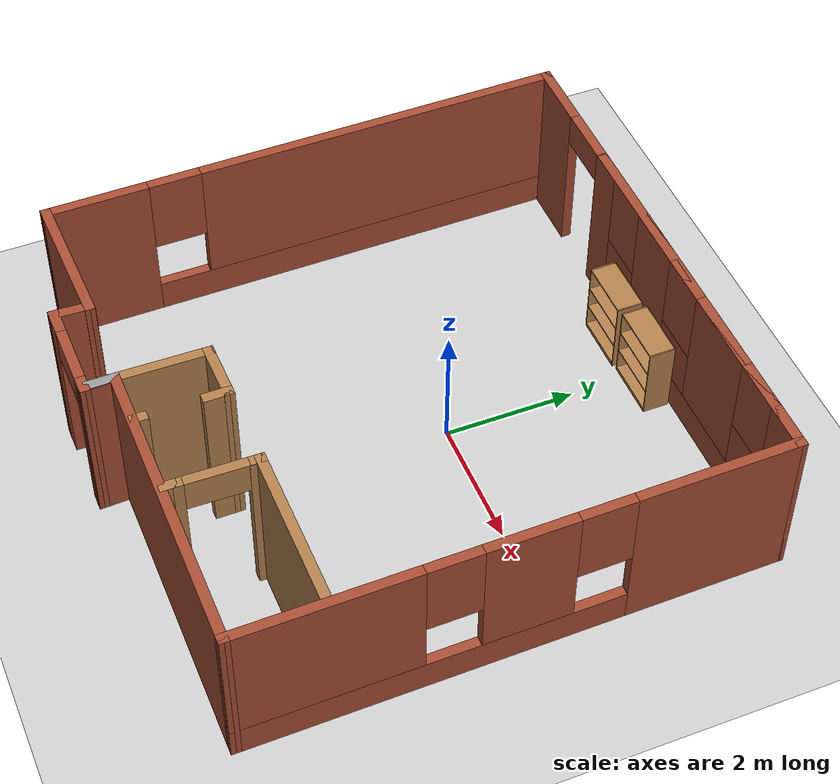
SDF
<sdf version="1.7">
 <world name="default">
  <light name="sun" type="directional">
   <pose>0 0 10 0 -0 0</pose>
   <diffuse>0.8 0.8 0.8 1</diffuse>
   <specular>0.2 0.2 0.2 1</specular>
   <attenuation>
    <range>1000</range>
    <constant>0.9</constant>
    <linear>0.01</linear>
    <quadratic>0.001</quadratic>
   </attenuation>
   <direction>-0.5 0.1 -0.9</direction>
   <spot><inner_angle>0</inner_angle><outer_angle>0</outer_angle><falloff>0</falloff></spot>
  </light>
  <model name="ground_plane">
   <static>1</static>
   <link name="link">
    <collision name="collision">
     <geometry><plane><normal>0 0 1</normal><size>100 100</size></plane></geometry>
     <surface>
      <contact><collide_bitmask>65535</collide_bitmask></contact>
      <friction><ode><mu>100</mu><mu2>50</mu2></ode></friction>
     </surface>
    </collision>
    <visual name="visual">
     <cast_shadows>0</cast_shadows>
     <geometry><plane><normal>0 0 1</normal><size>100 100</size></plane></geometry>
     <material>
      <script><uri>file://media/materials/scripts/gazebo.material</uri><name>Gazebo/Grey</name></script>
     </material>
    </visual>
   </link>
  </model>
  <gravity>0 0 -9.8</gravity>
  <magnetic_field>6e-06 2.3e-05 -4.2e-05</magnetic_field>
  <atmosphere type="adiabatic"/>
  <physics type="ode">
   <max_step_size>0.001</max_step_size>
   <real_time_factor>1</real_time_factor>
   <real_time_update_rate>1000</real_time_update_rate>
  </physics>
  <scene><ambient>0.4 0.4 0.4 1</ambient><background>0.7 0.7 0.7 1</background><shadows>1</shadows></scene>
  <audio><device>default</device></audio>
  <spherical_coordinates>
   <surface_model>EARTH_WGS84</surface_model>
   <latitude_deg>0</latitude_deg>
   <longitude_deg>0</longitude_deg>
   <elevation>0</elevation>
   <heading_deg>0</heading_deg>
  </spherical_coordinates>
  <model name="first_world">
   <pose>-0.115387 -0.833887 0 0 -0 0</pose>
   <link name="Wall_21">
    <collision name="Wall_21_Collision">
     <geometry><box><size>6 0.15 2.5</size></box></geometry>
     <pose>0 0 1.25 0 -0 0</pose>
    </collision>
    <visual name="Wall_21_Visual">
     <pose>0 0 1.25 0 -0 0</pose>
     <geometry><box><size>6 0.15 2.5</size></box></geometry>
     <material>
      <script><uri>file://media/materials/scripts/gazebo.material</uri><name>Gazebo/Bricks</name></script>
      <ambient>1 1 1 1</ambient>
     </material>
     <meta><layer>0</layer></meta>
    </visual>
    <pose>0.968407 4.17612 0 0 -0 0</pose>
   </link>
   <link name="Wall_22">
    <pose>3.93106 0.205323 0 0 -0 -1.56131</pose>
    <visual name="Wall_22_Visual_0">
     <pose>-2.82383 0 1.25 0 -0 0</pose>
     <geometry><box><size>2.44428 0.15 2.5</size></box></geometry>
     <material>
      <script><uri>file://media/materials/scripts/gazebo.material</uri><name>Gazebo/Bricks</name></script>
      <ambient>1 1 1 1</ambient>
     </material>
     <meta><layer>0</layer></meta>
    </visual>
    <collision name="Wall_22_Collision_0">
     <geometry><box><size>2.44428 0.15 2.5</size></box></geometry>
     <pose>-2.82383 0 1.25 0 -0 0</pose>
    </collision>
    <visual name="Wall_22_Visual_1">
     <pose>1.22214 0 0.25 0 -0 0</pose>
     <geometry><box><size>5.64767 0.15 0.5</size></box></geometry>
     <material>
      <script><uri>file://media/materials/scripts/gazebo.material</uri><name>Gazebo/Bricks</name></script>
      <ambient>1 1 1 1</ambient>
     </material>
     <meta><layer>0</layer></meta>
    </visual>
    <collision name="Wall_22_Collision_1">
     <geometry><box><size>5.64767 0.15 0.5</size></box></geometry>
     <pose>1.22214 0 0.25 0 -0 0</pose>
    </collision>
    <visual name="Wall_22_Visual_2">
     <pose>-0.137074 0 1.5 0 -0 0</pose>
     <geometry><box><size>1.32924 0.15 2</size></box></geometry>
     <material>
      <script><uri>file://media/materials/scripts/gazebo.material</uri><name>Gazebo/Bricks</name></script>
      <ambient>1 1 1 1</ambient>
     </material>
     <meta><layer>0</layer></meta>
    </visual>
    <collision name="Wall_22_Collision_2">
     <geometry><box><size>1.32924 0.15 2</size></box></geometry>
     <pose>-0.137074 0 1.5 0 -0 0</pose>
    </collision>
    <visual name="Wall_22_Visual_3">
     <pose>2.68676 0 1.5 0 -0 0</pose>
     <geometry><box><size>2.71843 0.15 2</size></box></geometry>
     <material>
      <script><uri>file://media/materials/scripts/gazebo.material</uri><name>Gazebo/Bricks</name></script>
      <ambient>1 1 1 1</ambient>
     </material>
     <meta><layer>0</layer></meta>
    </visual>
    <collision name="Wall_22_Collision_3">
     <geometry><box><size>2.71843 0.15 2</size></box></geometry>
     <pose>2.68676 0 1.5 0 -0 0</pose>
    </collision>
    <visual name="Wall_22_Visual_4">
     <pose>-1.20169 0 1.9 0 -0 0</pose>
     <geometry><box><size>0.8 0.15 1.2</size></box></geometry>
     <material>
      <script><uri>file://media/materials/scripts/gazebo.material</uri><name>Gazebo/Bricks</name></script>
      <ambient>1 1 1 1</ambient>
     </material>
     <meta><layer>0</layer></meta>
    </visual>
    <collision name="Wall_22_Collision_4">
     <geometry><box><size>0.8 0.15 1.2</size></box></geometry>
     <pose>-1.20169 0 1.9 0 -0 0</pose>
    </collision>
    <visual name="Wall_22_Visual_5">
     <pose>0.927544 0 1.9 0 -0 0</pose>
     <geometry><box><size>0.8 0.15 1.2</size></box></geometry>
     <material>
      <script><uri>file://media/materials/scripts/gazebo.material</uri><name>Gazebo/Bricks</name></script>
      <ambient>1 1 1 1</ambient>
     </material>
     <meta><layer>0</layer></meta>
    </visual>
    <collision name="Wall_22_Collision_5">
     <geometry><box><size>0.8 0.15 1.2</size></box></geometry>
     <pose>0.927544 0 1.9 0 -0 0</pose>
    </collision>
   </link>
   <link name="Wall_23">
    <collision name="Wall_23_Collision">
     <geometry><box><size>4.65766 0.15 2.5</size></box></geometry>
     <pose>0 0 1.25 0 -0 0</pose>
    </collision>
    <visual name="Wall_23_Visual">
     <pose>0 0 1.25 0 -0 0</pose>
     <geometry><box><size>4.65766 0.15 2.5</size></box></geometry>
     <material>
      <script><uri>file://media/materials/scripts/gazebo.material</uri><name>Gazebo/Bricks</name></script>
      <ambient>1 1 1 1</ambient>
     </material>
     <meta><layer>0</layer></meta>
    </visual>
    <pose>1.71492 -3.75237 0 0 -0 3.13578</pose>
   </link>
   <link name="Wall_24">
    <collision name="Wall_24_Collision">
     <geometry><box><size>0.5 0.15 2.5</size></box></geometry>
     <pose>0 0 1.25 0 -0 0</pose>
    </collision>
    <visual name="Wall_24_Visual">
     <pose>0 0 1.25 0 -0 0</pose>
     <geometry><box><size>0.5 0.15 2.5</size></box></geometry>
     <material>
      <script><uri>file://media/materials/scripts/gazebo.material</uri><name>Gazebo/Grey</name></script>
      <ambient>1 1 1 1</ambient>
     </material>
     <meta><layer>0</layer></meta>
    </visual>
    <pose>-0.538871 -3.91427 0 0 -0 -1.5708</pose>
   </link>
   <link name="Wall_26">
    <collision name="Wall_26_Collision">
     <geometry><box><size>0.5 0.15 2.5</size></box></geometry>
     <pose>0 0 1.25 0 -0 0</pose>
    </collision>
    <visual name="Wall_26_Visual">
     <pose>0 0 1.25 0 -0 0</pose>
     <geometry><box><size>0.5 0.15 2.5</size></box></geometry>
     <material>
      <script><uri>file://media/materials/scripts/gazebo.material</uri><name>Gazebo/Bricks</name></script>
      <ambient>1 1 1 1</ambient>
     </material>
     <meta><layer>0</layer></meta>
    </visual>
    <pose>-0.538871 -3.91427 0 0 -0 -1.5708</pose>
   </link>
   <link name="Wall_28">
    <pose>-1.23789 -4.17293 0 0 -0 0</pose>
    <visual name="Wall_28_Visual_0">
     <pose>-0.586909 0 1.25 0 -0 0</pose>
     <geometry><box><size>0.410991 0.15 2.5</size></box></geometry>
     <material>
      <script><uri>file://media/materials/scripts/gazebo.material</uri><name>Gazebo/Bricks</name></script>
      <ambient>1 1 1 1</ambient>
     </material>
     <meta><layer>0</layer></meta>
    </visual>
    <collision name="Wall_28_Collision_0">
     <geometry><box><size>0.410991 0.15 2.5</size></box></geometry>
     <pose>-0.586909 0 1.25 0 -0 0</pose>
    </collision>
    <visual name="Wall_28_Visual_1">
     <pose>0.655495 0 1.25 0 -0 0</pose>
     <geometry><box><size>0.273818 0.15 2.5</size></box></geometry>
     <material>
      <script><uri>file://media/materials/scripts/gazebo.material</uri><name>Gazebo/Bricks</name></script>
      <ambient>1 1 1 1</ambient>
     </material>
     <meta><layer>0</layer></meta>
    </visual>
    <collision name="Wall_28_Collision_1">
     <geometry><box><size>0.273818 0.15 2.5</size></box></geometry>
     <pose>0.655495 0 1.25 0 -0 0</pose>
    </collision>
    <visual name="Wall_28_Visual_2">
     <pose>0.068586 0 2.25 0 -0 0</pose>
     <geometry><box><size>0.9 0.15 0.5</size></box></geometry>
     <material>
      <script><uri>file://media/materials/scripts/gazebo.material</uri><name>Gazebo/Bricks</name></script>
      <ambient>1 1 1 1</ambient>
     </material>
     <meta><layer>0</layer></meta>
    </visual>
    <collision name="Wall_28_Collision_2">
     <geometry><box><size>0.9 0.15 0.5</size></box></geometry>
     <pose>0.068586 0 2.25 0 -0 0</pose>
    </collision>
   </link>
   <link name="Wall_29">
    <collision name="Wall_29_Collision">
     <geometry><box><size>0.584045 0.15 2.5</size></box></geometry>
     <pose>0 0 1.25 0 -0 0</pose>
    </collision>
    <visual name="Wall_29_Visual">
     <pose>0 0 1.25 0 -0 0</pose>
     <geometry><box><size>0.584045 0.15 2.5</size></box></geometry>
     <material>
      <script><uri>file://media/materials/scripts/gazebo.material</uri><name>Gazebo/Bricks</name></script>
      <ambient>1 1 1 1</ambient>
     </material>
     <meta><layer>0</layer></meta>
    </visual>
    <pose>-0.529686 -3.9561 0 0 -0 1.61313</pose>
   </link>
   <link name="Wall_31">
    <collision name="Wall_31_Collision">
     <geometry><box><size>0.637655 0.15 2.5</size></box></geometry>
     <pose>0 0 1.25 0 -0 0</pose>
    </collision>
    <visual name="Wall_31_Visual">
     <pose>0 0 1.25 0 -0 0</pose>
     <geometry><box><size>0.637655 0.15 2.5</size></box></geometry>
     <material>
      <script><uri>file://media/materials/scripts/gazebo.material</uri><name>Gazebo/Bricks</name></script>
      <ambient>1 1 1 1</ambient>
     </material>
     <meta><layer>0</layer></meta>
    </visual>
    <pose>-1.94224 -3.92945 0 0 -0 -1.62432</pose>
   </link>
   <link name="Wall_34">
    <collision name="Wall_34_Collision">
     <geometry><box><size>2.1493 0.15 2.5</size></box></geometry>
     <pose>0 0 1.25 0 -0 0</pose>
    </collision>
    <visual name="Wall_34_Visual">
     <pose>0 0 1.25 0 -0 0</pose>
     <geometry><box><size>2.1493 0.15 2.5</size></box></geometry>
     <material>
      <script><uri>file://media/materials/scripts/gazebo.material</uri><name>Gazebo/Bricks</name></script>
      <ambient>1 1 1 1</ambient>
     </material>
     <meta><layer>0</layer></meta>
    </visual>
    <pose>-2.92862 -3.70717 0 0 -0 0.02121</pose>
   </link>
   <link name="Wall_36">
    <pose>-3.94854 0.223441 0 0 -0 1.57598</pose>
    <visual name="Wall_36_Visual_0">
     <pose>-3.22901 0 1.25 0 -0 0</pose>
     <geometry><box><size>1.59571 0.15 2.5</size></box></geometry>
     <material>
      <script><uri>file://media/materials/scripts/gazebo.material</uri><name>Gazebo/Bricks</name></script>
      <ambient>1 1 1 1</ambient>
     </material>
     <meta><layer>0</layer></meta>
    </visual>
    <collision name="Wall_36_Collision_0">
     <geometry><box><size>1.59571 0.15 2.5</size></box></geometry>
     <pose>-3.22901 0 1.25 0 -0 0</pose>
    </collision>
    <visual name="Wall_36_Visual_1">
     <pose>0.797854 0 0.25 0 -0 0</pose>
     <geometry><box><size>6.45802 0.15 0.5</size></box></geometry>
     <material>
      <script><uri>file://media/materials/scripts/gazebo.material</uri><name>Gazebo/Bricks</name></script>
      <ambient>1 1 1 1</ambient>
     </material>
     <meta><layer>0</layer></meta>
    </visual>
    <collision name="Wall_36_Collision_1">
     <geometry><box><size>6.45802 0.15 0.5</size></box></geometry>
     <pose>0.797854 0 0.25 0 -0 0</pose>
    </collision>
    <visual name="Wall_36_Visual_2">
     <pose>1.19785 0 1.5 0 -0 0</pose>
     <geometry><box><size>5.65802 0.15 2</size></box></geometry>
     <material>
      <script><uri>file://media/materials/scripts/gazebo.material</uri><name>Gazebo/Bricks</name></script>
      <ambient>1 1 1 1</ambient>
     </material>
     <meta><layer>0</layer></meta>
    </visual>
    <collision name="Wall_36_Collision_2">
     <geometry><box><size>5.65802 0.15 2</size></box></geometry>
     <pose>1.19785 0 1.5 0 -0 0</pose>
    </collision>
    <visual name="Wall_36_Visual_3">
     <pose>-2.03116 0 1.9 0 -0 0</pose>
     <geometry><box><size>0.8 0.15 1.2</size></box></geometry>
     <material>
      <script><uri>file://media/materials/scripts/gazebo.material</uri><name>Gazebo/Bricks</name></script>
      <ambient>1 1 1 1</ambient>
     </material>
     <meta><layer>0</layer></meta>
    </visual>
    <collision name="Wall_36_Collision_3">
     <geometry><box><size>0.8 0.15 1.2</size></box></geometry>
     <pose>-2.03116 0 1.9 0 -0 0</pose>
    </collision>
   </link>
   <link name="Wall_39">
    <pose>-0.037815 4.17569 0 0 -0 0.00011</pose>
    <visual name="Wall_39_Visual_0">
     <pose>-3.4598 0 1.25 0 -0 0</pose>
     <geometry><box><size>1.09284 0.15 2.5</size></box></geometry>
     <material>
      <script><uri>file://media/materials/scripts/gazebo.material</uri><name>Gazebo/Bricks</name></script>
      <ambient>1 1 1 1</ambient>
     </material>
     <meta><layer>0</layer></meta>
    </visual>
    <collision name="Wall_39_Collision_0">
     <geometry><box><size>1.09284 0.15 2.5</size></box></geometry>
     <pose>-3.4598 0 1.25 0 -0 0</pose>
    </collision>
    <visual name="Wall_39_Visual_1">
     <pose>-1.72251 0 1.25 0 -0 0</pose>
     <geometry><box><size>0.581728 0.15 2.5</size></box></geometry>
     <material>
      <script><uri>file://media/materials/scripts/gazebo.material</uri><name>Gazebo/Bricks</name></script>
      <ambient>1 1 1 1</ambient>
     </material>
     <meta><layer>0</layer></meta>
    </visual>
    <collision name="Wall_39_Collision_1">
     <geometry><box><size>0.581728 0.15 2.5</size></box></geometry>
     <pose>-1.72251 0 1.25 0 -0 0</pose>
    </collision>
    <visual name="Wall_39_Visual_2">
     <pose>1.28729 0 0.25 0 -0 0</pose>
     <geometry><box><size>5.43787 0.15 0.5</size></box></geometry>
     <material>
      <script><uri>file://media/materials/scripts/gazebo.material</uri><name>Gazebo/Bricks</name></script>
      <ambient>1 1 1 1</ambient>
     </material>
     <meta><layer>0</layer></meta>
    </visual>
    <collision name="Wall_39_Collision_2">
     <geometry><box><size>5.43787 0.15 0.5</size></box></geometry>
     <pose>1.28729 0 0.25 0 -0 0</pose>
    </collision>
    <visual name="Wall_39_Visual_3">
     <pose>-0.141117 0 1.5 0 -0 0</pose>
     <geometry><box><size>0.981067 0.15 2</size></box></geometry>
     <material>
      <script><uri>file://media/materials/scripts/gazebo.material</uri><name>Gazebo/Bricks</name></script>
      <ambient>1 1 1 1</ambient>
     </material>
     <meta><layer>0</layer></meta>
    </visual>
    <collision name="Wall_39_Collision_3">
     <geometry><box><size>0.981067 0.15 2</size></box></geometry>
     <pose>-0.141117 0 1.5 0 -0 0</pose>
    </collision>
    <visual name="Wall_39_Visual_4">
     <pose>1.81341 0 1.5 0 -0 0</pose>
     <geometry><box><size>1.32798 0.15 2</size></box></geometry>
     <material>
      <script><uri>file://media/materials/scripts/gazebo.material</uri><name>Gazebo/Bricks</name></script>
      <ambient>1 1 1 1</ambient>
     </material>
     <meta><layer>0</layer></meta>
    </visual>
    <collision name="Wall_39_Collision_4">
     <geometry><box><size>1.32798 0.15 2</size></box></geometry>
     <pose>1.81341 0 1.5 0 -0 0</pose>
    </collision>
    <visual name="Wall_39_Visual_5">
     <pose>3.64181 0 1.5 0 -0 0</pose>
     <geometry><box><size>0.728822 0.15 2</size></box></geometry>
     <material>
      <script><uri>file://media/materials/scripts/gazebo.material</uri><name>Gazebo/Bricks</name></script>
      <ambient>1 1 1 1</ambient>
     </material>
     <meta><layer>0</layer></meta>
    </visual>
    <collision name="Wall_39_Collision_5">
     <geometry><box><size>0.728822 0.15 2</size></box></geometry>
     <pose>3.64181 0 1.5 0 -0 0</pose>
    </collision>
    <visual name="Wall_39_Visual_6">
     <pose>-1.03165 0 1.9 0 -0 0</pose>
     <geometry><box><size>0.8 0.15 1.2</size></box></geometry>
     <material>
      <script><uri>file://media/materials/scripts/gazebo.material</uri><name>Gazebo/Bricks</name></script>
      <ambient>1 1 1 1</ambient>
     </material>
     <meta><layer>0</layer></meta>
    </visual>
    <collision name="Wall_39_Collision_6">
     <geometry><box><size>0.8 0.15 1.2</size></box></geometry>
     <pose>-1.03165 0 1.9 0 -0 0</pose>
    </collision>
    <visual name="Wall_39_Visual_7">
     <pose>0.749417 0 1.9 0 -0 0</pose>
     <geometry><box><size>0.8 0.15 1.2</size></box></geometry>
     <material>
      <script><uri>file://media/materials/scripts/gazebo.material</uri><name>Gazebo/Bricks</name></script>
      <ambient>1 1 1 1</ambient>
     </material>
     <meta><layer>0</layer></meta>
    </visual>
    <collision name="Wall_39_Collision_7">
     <geometry><box><size>0.8 0.15 1.2</size></box></geometry>
     <pose>0.749417 0 1.9 0 -0 0</pose>
    </collision>
    <visual name="Wall_39_Visual_8">
     <pose>2.8774 0 1.9 0 -0 0</pose>
     <geometry><box><size>0.8 0.15 1.2</size></box></geometry>
     <material>
      <script><uri>file://media/materials/scripts/gazebo.material</uri><name>Gazebo/Bricks</name></script>
      <ambient>1 1 1 1</ambient>
     </material>
     <meta><layer>0</layer></meta>
    </visual>
    <collision name="Wall_39_Collision_8">
     <geometry><box><size>0.8 0.15 1.2</size></box></geometry>
     <pose>2.8774 0 1.9 0 -0 0</pose>
    </collision>
    <visual name="Wall_39_Visual_9">
     <pose>-2.46338 0 2.25 0 -0 0</pose>
     <geometry><box><size>0.9 0.15 0.5</size></box></geometry>
     <material>
      <script><uri>file://media/materials/scripts/gazebo.material</uri><name>Gazebo/Bricks</name></script>
      <ambient>1 1 1 1</ambient>
     </material>
     <meta><layer>0</layer></meta>
    </visual>
    <collision name="Wall_39_Collision_9">
     <geometry><box><size>0.9 0.15 0.5</size></box></geometry>
     <pose>-2.46338 0 2.25 0 -0 0</pose>
    </collision>
   </link>
   <link name="Wall_41">
    <collision name="Wall_41_Collision">
     <geometry><box><size>2.5 0.15 2.5</size></box></geometry>
     <pose>0 0 1.25 0 -0 0</pose>
    </collision>
    <visual name="Wall_41_Visual">
     <pose>0 0 1.25 0 -0 0</pose>
     <geometry><box><size>2.5 0.15 2.5</size></box></geometry>
     <material>
      <script><uri>file://media/materials/scripts/gazebo.material</uri><name>Gazebo/Wood</name></script>
      <ambient>1 1 1 1</ambient>
     </material>
     <meta><layer>0</layer></meta>
    </visual>
    <pose>2.68137 -2.39982 0 0 -0 0</pose>
   </link>
   <link name="Wall_43">
    <collision name="Wall_43_Collision">
     <geometry><box><size>1.46697 0.15 2.5</size></box></geometry>
     <pose>0 0 1.25 0 -0 0</pose>
    </collision>
    <visual name="Wall_43_Visual">
     <pose>0 0 1.25 0 -0 0</pose>
     <geometry><box><size>1.46697 0.15 2.5</size></box></geometry>
     <material>
      <script><uri>file://media/materials/scripts/gazebo.material</uri><name>Gazebo/Wood</name></script>
      <ambient>1 1 1 1</ambient>
     </material>
     <meta><layer>0</layer></meta>
    </visual>
    <pose>-0.528965 -3.08086 0 0 -0 1.55575</pose>
   </link>
   <link name="Wall_44">
    <collision name="Wall_44_Collision">
     <geometry><box><size>0.927605 0.15 2.5</size></box></geometry>
     <pose>0 0 1.25 0 -0 0</pose>
    </collision>
    <visual name="Wall_44_Visual">
     <pose>0 0 1.25 0 -0 0</pose>
     <geometry><box><size>0.927605 0.15 2.5</size></box></geometry>
     <material>
      <script><uri>file://media/materials/scripts/gazebo.material</uri><name>Gazebo/Wood</name></script>
      <ambient>1 1 1 1</ambient>
     </material>
     <meta><layer>0</layer></meta>
    </visual>
    <pose>-0.130266 -2.41959 0 0 -0 0.007353</pose>
   </link>
   <link name="Wall_45">
    <collision name="Wall_45_Collision">
     <geometry><box><size>0.44165 0.15 2.5</size></box></geometry>
     <pose>0 0 1.25 0 -0 0</pose>
    </collision>
    <visual name="Wall_45_Visual">
     <pose>0 0 1.25 0 -0 0</pose>
     <geometry><box><size>0.44165 0.15 2.5</size></box></geometry>
     <material>
      <script><uri>file://media/materials/scripts/gazebo.material</uri><name>Gazebo/Wood</name></script>
      <ambient>1 1 1 1</ambient>
     </material>
     <meta><layer>0</layer></meta>
    </visual>
    <pose>0.258526 -2.56252 0 0 -0 -1.5708</pose>
   </link>
   <link name="Wall_47">
    <collision name="Wall_47_Collision">
     <geometry><box><size>0.25 0.15 2.5</size></box></geometry>
     <pose>0 0 1.25 0 -0 0</pose>
    </collision>
    <visual name="Wall_47_Visual">
     <pose>0 0 1.25 0 -0 0</pose>
     <geometry><box><size>0.25 0.15 2.5</size></box></geometry>
     <material>
      <script><uri>file://media/materials/scripts/gazebo.material</uri><name>Gazebo/Wood</name></script>
      <ambient>1 1 1 1</ambient>
     </material>
     <meta><layer>0</layer></meta>
    </visual>
    <pose>0.252808 -3.65597 0 0 -0 -1.5708</pose>
   </link>
   <link name="Wall_49">
    <collision name="Wall_49_Collision">
     <geometry><box><size>0.25 0.15 2.5</size></box></geometry>
     <pose>0 0 1.25 0 -0 0</pose>
    </collision>
    <visual name="Wall_49_Visual">
     <pose>0 0 1.25 0 -0 0</pose>
     <geometry><box><size>0.25 0.15 2.5</size></box></geometry>
     <material>
      <script><uri>file://media/materials/scripts/gazebo.material</uri><name>Gazebo/Wood</name></script>
      <ambient>1 1 1 1</ambient>
     </material>
     <meta><layer>0</layer></meta>
    </visual>
    <pose>1.50637 -2.44982 0 0 -0 -1.5708</pose>
   </link>
   <link name="Wall_51">
    <collision name="Wall_51_Collision">
     <geometry><box><size>0.25 0.15 2.5</size></box></geometry>
     <pose>0 0 1.25 0 -0 0</pose>
    </collision>
    <visual name="Wall_51_Visual">
     <pose>0 0 1.25 0 -0 0</pose>
     <geometry><box><size>0.25 0.15 2.5</size></box></geometry>
     <material>
      <script><uri>file://media/materials/scripts/gazebo.material</uri><name>Gazebo/Wood</name></script>
      <ambient>1 1 1 1</ambient>
     </material>
     <meta><layer>0</layer></meta>
    </visual>
    <pose>1.48208 -3.65317 0 0 -0 1.5708</pose>
   </link>
   <link name="Wall_52">
    <pose>1.49423 -3.00149 0 0 -0 1.55061</pose>
    <visual name="Wall_52_Visual_0">
     <pose>-0.565649 0 1.25 0 -0 0</pose>
     <geometry><box><size>0.222302 0.15 2.5</size></box></geometry>
     <material>
      <script><uri>file://media/materials/scripts/gazebo.material</uri><name>Gazebo/Wood</name></script>
      <ambient>1 1 1 1</ambient>
     </material>
     <meta><layer>0</layer></meta>
    </visual>
    <collision name="Wall_52_Collision_0">
     <geometry><box><size>0.222302 0.15 2.5</size></box></geometry>
     <pose>-0.565649 0 1.25 0 -0 0</pose>
    </collision>
    <visual name="Wall_52_Visual_1">
     <pose>0.561151 0 1.25 0 -0 0</pose>
     <geometry><box><size>0.231299 0.15 2.5</size></box></geometry>
     <material>
      <script><uri>file://media/materials/scripts/gazebo.material</uri><name>Gazebo/Wood</name></script>
      <ambient>1 1 1 1</ambient>
     </material>
     <meta><layer>0</layer></meta>
    </visual>
    <collision name="Wall_52_Collision_1">
     <geometry><box><size>0.231299 0.15 2.5</size></box></geometry>
     <pose>0.561151 0 1.25 0 -0 0</pose>
    </collision>
    <visual name="Wall_52_Visual_2">
     <pose>-0.004498 0 2.25 0 -0 0</pose>
     <geometry><box><size>0.9 0.15 0.5</size></box></geometry>
     <material>
      <script><uri>file://media/materials/scripts/gazebo.material</uri><name>Gazebo/Wood</name></script>
      <ambient>1 1 1 1</ambient>
     </material>
     <meta><layer>0</layer></meta>
    </visual>
    <collision name="Wall_52_Collision_2">
     <geometry><box><size>0.9 0.15 0.5</size></box></geometry>
     <pose>-0.004498 0 2.25 0 -0 0</pose>
    </collision>
   </link>
   <static>1</static>
  </model>
  <model name="bookshelf">
   <static>1</static>
   <link name="link">
    <inertial><mass>1</mass></inertial>
    <collision name="back">
     <pose>0 0.005 0.6 0 -0 0</pose>
     <geometry><box><size>0.9 0.01 1.2</size></box></geometry>
    </collision>
    <visual name="visual1">
     <pose>0 0.005 0.6 0 -0 0</pose>
     <geometry><box><size>0.9 0.01 1.2</size></box></geometry>
     <material>
      <script><uri>file://media/materials/scripts/gazebo.material</uri><name>Gazebo/Wood</name></script>
     </material>
    </visual>
    <collision name="left_side">
     <pose>0.45 -0.195 0.6 0 -0 0</pose>
     <geometry><box><size>0.02 0.4 1.2</size></box></geometry>
    </collision>
    <visual name="visual2">
     <pose>0.45 -0.195 0.6 0 -0 0</pose>
     <geometry><box><size>0.02 0.4 1.2</size></box></geometry>
     <material>
      <script><uri>file://media/materials/scripts/gazebo.material</uri><name>Gazebo/Wood</name></script>
     </material>
    </visual>
    <collision name="right_side">
     <pose>-0.45 -0.195 0.6 0 -0 0</pose>
     <geometry><box><size>0.02 0.4 1.2</size></box></geometry>
    </collision>
    <visual name="visual3">
     <pose>-0.45 -0.195 0.6 0 -0 0</pose>
     <geometry><box><size>0.02 0.4 1.2</size></box></geometry>
     <material>
      <script><uri>file://media/materials/scripts/gazebo.material</uri><name>Gazebo/Wood</name></script>
     </material>
    </visual>
    <collision name="bottom">
     <pose>0 -0.195 0.03 0 -0 0</pose>
     <geometry><box><size>0.88 0.4 0.06</size></box></geometry>
    </collision>
    <visual name="visual4">
     <pose>0 -0.195 0.03 0 -0 0</pose>
     <geometry><box><size>0.88 0.4 0.06</size></box></geometry>
     <material>
      <script><uri>file://media/materials/scripts/gazebo.material</uri><name>Gazebo/Wood</name></script>
     </material>
    </visual>
    <collision name="top">
     <pose>0 -0.195 1.19 0 -0 0</pose>
     <geometry><box><size>0.88 0.4 0.02</size></box></geometry>
    </collision>
    <visual name="visual5">
     <pose>0 -0.195 1.19 0 -0 0</pose>
     <geometry><box><size>0.88 0.4 0.02</size></box></geometry>
     <material>
      <script><uri>file://media/materials/scripts/gazebo.material</uri><name>Gazebo/Wood</name></script>
     </material>
    </visual>
    <collision name="low_shelf">
     <pose>0 -0.195 0.43 0 -0 0</pose>
     <geometry><box><size>0.88 0.4 0.02</size></box></geometry>
    </collision>
    <visual name="visual6">
     <pose>0 -0.195 0.43 0 -0 0</pose>
     <geometry><box><size>0.88 0.4 0.02</size></box></geometry>
     <material>
      <script><uri>file://media/materials/scripts/gazebo.material</uri><name>Gazebo/Wood</name></script>
     </material>
    </visual>
    <collision name="high_shelf">
     <pose>0 -0.195 0.8 0 -0 0</pose>
     <geometry><box><size>0.88 0.4 0.02</size></box></geometry>
    </collision>
    <visual name="visual7">
     <pose>0 -0.195 0.8 0 -0 0</pose>
     <geometry><box><size>0.88 0.4 0.02</size></box></geometry>
     <material>
      <script><uri>file://media/materials/scripts/gazebo.material</uri><name>Gazebo/Wood</name></script>
     </material>
    </visual>
   </link>
   <pose>-0.743126 3.19977 0 0 -0 0</pose>
  </model>
  <model name="bookshelf_0">
   <static>1</static>
   <link name="link">
    <inertial><mass>1</mass></inertial>
    <collision name="back">
     <pose>0 0.005 0.6 0 -0 0</pose>
     <geometry><box><size>0.9 0.01 1.2</size></box></geometry>
    </collision>
    <visual name="visual1">
     <pose>0 0.005 0.6 0 -0 0</pose>
     <geometry><box><size>0.9 0.01 1.2</size></box></geometry>
     <material>
      <script><uri>file://media/materials/scripts/gazebo.material</uri><name>Gazebo/Wood</name></script>
     </material>
    </visual>
    <collision name="left_side">
     <pose>0.45 -0.195 0.6 0 -0 0</pose>
     <geometry><box><size>0.02 0.4 1.2</size></box></geometry>
    </collision>
    <visual name="visual2">
     <pose>0.45 -0.195 0.6 0 -0 0</pose>
     <geometry><box><size>0.02 0.4 1.2</size></box></geometry>
     <material>
      <script><uri>file://media/materials/scripts/gazebo.material</uri><name>Gazebo/Wood</name></script>
     </material>
    </visual>
    <collision name="right_side">
     <pose>-0.45 -0.195 0.6 0 -0 0</pose>
     <geometry><box><size>0.02 0.4 1.2</size></box></geometry>
    </collision>
    <visual name="visual3">
     <pose>-0.45 -0.195 0.6 0 -0 0</pose>
     <geometry><box><size>0.02 0.4 1.2</size></box></geometry>
     <material>
      <script><uri>file://media/materials/scripts/gazebo.material</uri><name>Gazebo/Wood</name></script>
     </material>
    </visual>
    <collision name="bottom">
     <pose>0 -0.195 0.03 0 -0 0</pose>
     <geometry><box><size>0.88 0.4 0.06</size></box></geometry>
    </collision>
    <visual name="visual4">
     <pose>0 -0.195 0.03 0 -0 0</pose>
     <geometry><box><size>0.88 0.4 0.06</size></box></geometry>
     <material>
      <script><uri>file://media/materials/scripts/gazebo.material</uri><name>Gazebo/Wood</name></script>
     </material>
    </visual>
    <collision name="top">
     <pose>0 -0.195 1.19 0 -0 0</pose>
     <geometry><box><size>0.88 0.4 0.02</size></box></geometry>
    </collision>
    <visual name="visual5">
     <pose>0 -0.195 1.19 0 -0 0</pose>
     <geometry><box><size>0.88 0.4 0.02</size></box></geometry>
     <material>
      <script><uri>file://media/materials/scripts/gazebo.material</uri><name>Gazebo/Wood</name></script>
     </material>
    </visual>
    <collision name="low_shelf">
     <pose>0 -0.195 0.43 0 -0 0</pose>
     <geometry><box><size>0.88 0.4 0.02</size></box></geometry>
    </collision>
    <visual name="visual6">
     <pose>0 -0.195 0.43 0 -0 0</pose>
     <geometry><box><size>0.88 0.4 0.02</size></box></geometry>
     <material>
      <script><uri>file://media/materials/scripts/gazebo.material</uri><name>Gazebo/Wood</name></script>
     </material>
    </visual>
    <collision name="high_shelf">
     <pose>0 -0.195 0.8 0 -0 0</pose>
     <geometry><box><size>0.88 0.4 0.02</size></box></geometry>
    </collision>
    <visual name="visual7">
     <pose>0 -0.195 0.8 0 -0 0</pose>
     <geometry><box><size>0.88 0.4 0.02</size></box></geometry>
     <material>
      <script><uri>file://media/materials/scripts/gazebo.material</uri><name>Gazebo/Wood</name></script>
     </material>
    </visual>
   </link>
   <pose>0.243587 3.22957 0 0 -0 0</pose>
  </model>
 </world>
</sdf>
